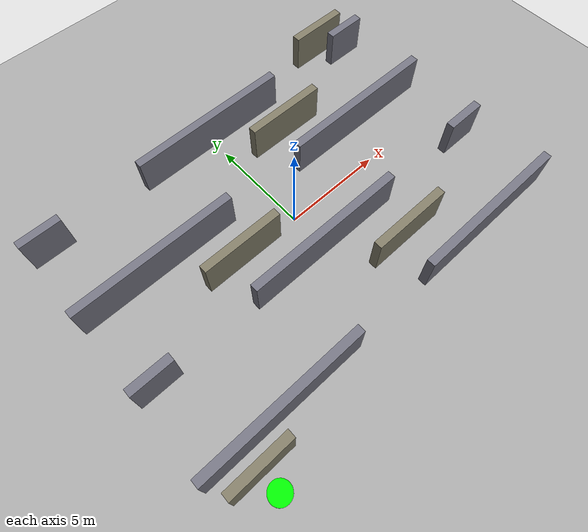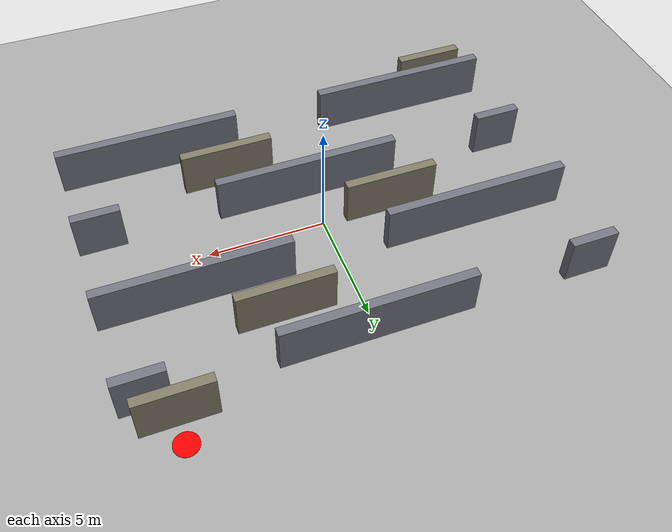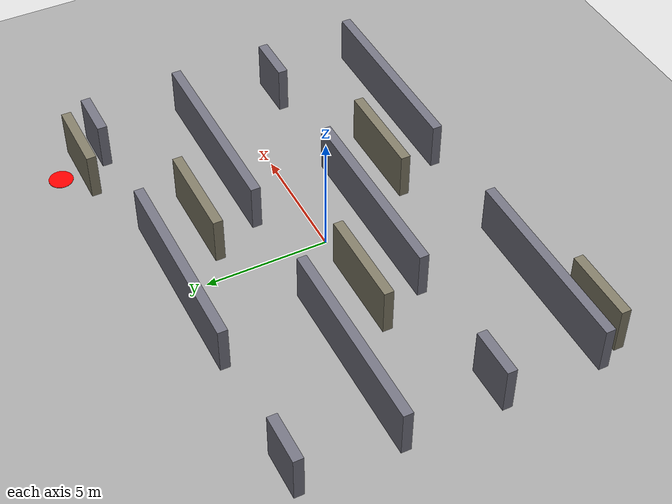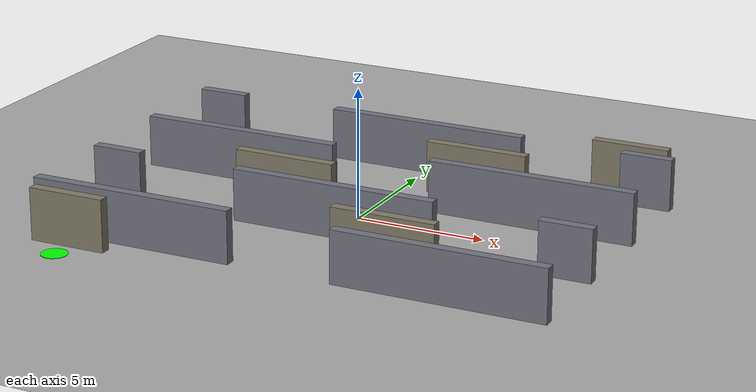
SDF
<?xml version="1.0" ?>
<sdf version="1.9">
  <world name="maze_world">

    <!-- Core system plugins (required by Gazebo Harmonic/gz-sim) -->
    <plugin
      filename="gz-sim-physics-system"
      name="gz::sim::systems::Physics">
    </plugin>
    <plugin
      filename="gz-sim-user-commands-system"
      name="gz::sim::systems::UserCommands">
    </plugin>
    <plugin
      filename="gz-sim-scene-broadcaster-system"
      name="gz::sim::systems::SceneBroadcaster">
    </plugin>
    <plugin
      filename="gz-sim-sensors-system"
      name="gz::sim::systems::Sensors">
      <render_engine>ogre2</render_engine>
    </plugin>

    <!-- Lightweight physics settings (same as previous worlds) -->
    <physics name="default_physics" type="dart">
      <max_step_size>0.004</max_step_size>
      <real_time_factor>1.0</real_time_factor>
      <real_time_update_rate>250</real_time_update_rate>
    </physics>

    <!-- Scene / lighting: identical to Forest World and Warehouse World -->
    <scene>
      <ambient>0.7 0.7 0.7 1</ambient>
      <background>0.72 0.82 0.93 1</background>
      <shadows>false</shadows>
      <grid>false</grid>
      <sky></sky>
    </scene>

    <light type="directional" name="sun">
      <cast_shadows>false</cast_shadows>
      <pose>0 0 10 0 0 0</pose>
      <diffuse>0.9 0.9 0.85 1</diffuse>
      <specular>0.2 0.2 0.2 1</specular>
      <direction>-0.4 0.2 -0.9</direction>
      <intensity>1.0</intensity>
    </light>

    <!-- Flat floor: 60 x 60 m -->
    <model name="ground_plane">
      <static>true</static>
      <link name="link">
        <collision name="collision">
          <geometry>
            <plane>
              <normal>0 0 1</normal>
              <size>60 60</size>
            </plane>
          </geometry>
          <surface>
            <friction>
              <ode>
                <mu>0.9</mu>
                <mu2>0.9</mu2>
              </ode>
            </friction>
          </surface>
        </collision>
        <visual name="visual">
          <geometry>
            <plane>
              <normal>0 0 1</normal>
              <size>60 60</size>
            </plane>
          </geometry>
          <material>
            <ambient>0.6 0.6 0.6 1</ambient>
            <diffuse>0.65 0.65 0.65 1</diffuse>
            <specular>0.1 0.1 0.1 1</specular>
          </material>
        </visual>
      </link>
    </model>

    <!-- START / GOAL MARKERS: same coordinates and style as previous worlds -->
    <model name="start_marker">
      <static>true</static>
      <pose>-8 -8 0.01 0 0 0</pose>
      <link name="link">
        <visual name="visual">
          <geometry>
            <cylinder>
              <radius>0.5</radius>
              <length>0.02</length>
            </cylinder>
          </geometry>
          <material>
            <ambient>0 1 0 1</ambient>
            <diffuse>0 1 0 1</diffuse>
            <emissive>0 0.3 0 1</emissive>
          </material>
        </visual>
      </link>
    </model>

    <model name="goal_marker">
      <static>true</static>
      <pose>8 8 0.01 0 0 0</pose>
      <link name="link">
        <visual name="visual">
          <geometry>
            <cylinder>
              <radius>0.5</radius>
              <length>0.02</length>
            </cylinder>
          </geometry>
          <material>
            <ambient>1 0 0 1</ambient>
            <diffuse>1 0 0 1</diffuse>
            <emissive>0.3 0 0 1</emissive>
          </material>
        </visual>
      </link>
    </model>

    <!-- Row 1 (y = -6): single gap centered at x = 0 -->
    <model name="wall_row1_a">
      <static>true</static>
      <pose>-6 -6 1 0 0 0</pose>
      <link name="link">
        <collision name="collision"><geometry><box><size>8 0.4 2</size></box></geometry></collision>
        <visual name="visual">
          <geometry><box><size>8 0.4 2</size></box></geometry>
          <material><ambient>0.45 0.45 0.5 1</ambient><diffuse>0.45 0.45 0.5 1</diffuse></material>
        </visual>
      </link>
    </model>

    <model name="wall_row1_b">
      <static>true</static>
      <pose>6 -6 1 0 0 0</pose>
      <link name="link">
        <collision name="collision"><geometry><box><size>8 0.4 2</size></box></geometry></collision>
        <visual name="visual">
          <geometry><box><size>8 0.4 2</size></box></geometry>
          <material><ambient>0.45 0.45 0.5 1</ambient><diffuse>0.45 0.45 0.5 1</diffuse></material>
        </visual>
      </link>
    </model>

    <!-- Row 2 (y = -2): two gaps -> junction, near x=-6 and x=6 -->
    <model name="wall_row2_a">
      <static>true</static>
      <pose>-9 -2 1 0 0 0</pose>
      <link name="link">
        <collision name="collision"><geometry><box><size>2 0.4 2</size></box></geometry></collision>
        <visual name="visual">
          <geometry><box><size>2 0.4 2</size></box></geometry>
          <material><ambient>0.45 0.45 0.5 1</ambient><diffuse>0.45 0.45 0.5 1</diffuse></material>
        </visual>
      </link>
    </model>

    <model name="wall_row2_b">
      <static>true</static>
      <pose>0 -2 1 0 0 0</pose>
      <link name="link">
        <collision name="collision"><geometry><box><size>8 0.4 2</size></box></geometry></collision>
        <visual name="visual">
          <geometry><box><size>8 0.4 2</size></box></geometry>
          <material><ambient>0.45 0.45 0.5 1</ambient><diffuse>0.45 0.45 0.5 1</diffuse></material>
        </visual>
      </link>
    </model>

    <model name="wall_row2_c">
      <static>true</static>
      <pose>9 -2 1 0 0 0</pose>
      <link name="link">
        <collision name="collision"><geometry><box><size>2 0.4 2</size></box></geometry></collision>
        <visual name="visual">
          <geometry><box><size>2 0.4 2</size></box></geometry>
          <material><ambient>0.45 0.45 0.5 1</ambient><diffuse>0.45 0.45 0.5 1</diffuse></material>
        </visual>
      </link>
    </model>

    <!-- Row 3 (y = 2): single gap centered at x = 0 -->
    <model name="wall_row3_a">
      <static>true</static>
      <pose>-6 2 1 0 0 0</pose>
      <link name="link">
        <collision name="collision"><geometry><box><size>8 0.4 2</size></box></geometry></collision>
        <visual name="visual">
          <geometry><box><size>8 0.4 2</size></box></geometry>
          <material><ambient>0.45 0.45 0.5 1</ambient><diffuse>0.45 0.45 0.5 1</diffuse></material>
        </visual>
      </link>
    </model>

    <model name="wall_row3_b">
      <static>true</static>
      <pose>6 2 1 0 0 0</pose>
      <link name="link">
        <collision name="collision"><geometry><box><size>8 0.4 2</size></box></geometry></collision>
        <visual name="visual">
          <geometry><box><size>8 0.4 2</size></box></geometry>
          <material><ambient>0.45 0.45 0.5 1</ambient><diffuse>0.45 0.45 0.5 1</diffuse></material>
        </visual>
      </link>
    </model>

    <!-- Row 4 (y = 6): two gaps -> junction, near x=-6 and x=6 -->
    <model name="wall_row4_a">
      <static>true</static>
      <pose>-9 6 1 0 0 0</pose>
      <link name="link">
        <collision name="collision"><geometry><box><size>2 0.4 2</size></box></geometry></collision>
        <visual name="visual">
          <geometry><box><size>2 0.4 2</size></box></geometry>
          <material><ambient>0.45 0.45 0.5 1</ambient><diffuse>0.45 0.45 0.5 1</diffuse></material>
        </visual>
      </link>
    </model>

    <model name="wall_row4_b">
      <static>true</static>
      <pose>0 6 1 0 0 0</pose>
      <link name="link">
        <collision name="collision"><geometry><box><size>8 0.4 2</size></box></geometry></collision>
        <visual name="visual">
          <geometry><box><size>8 0.4 2</size></box></geometry>
          <material><ambient>0.45 0.45 0.5 1</ambient><diffuse>0.45 0.45 0.5 1</diffuse></material>
        </visual>
      </link>
    </model>

    <model name="wall_row4_c">
      <static>true</static>
      <pose>9 6 1 0 0 0</pose>
      <link name="link">
        <collision name="collision"><geometry><box><size>2 0.4 2</size></box></geometry></collision>
        <visual name="visual">
          <geometry><box><size>2 0.4 2</size></box></geometry>
          <material><ambient>0.45 0.45 0.5 1</ambient><diffuse>0.45 0.45 0.5 1</diffuse></material>
        </visual>
      </link>
    </model>

    <!-- Baffles: short walls inside open bands adding extra turns without blocking any route -->
    <model name="baffle_start">
      <static>true</static>
      <pose>-8 -7 1 0 0 0</pose>
      <link name="link">
        <collision name="collision"><geometry><box><size>3 0.4 2</size></box></geometry></collision>
        <visual name="visual">
          <geometry><box><size>3 0.4 2</size></box></geometry>
          <material><ambient>0.5 0.48 0.4 1</ambient><diffuse>0.5 0.48 0.4 1</diffuse></material>
        </visual>
      </link>
    </model>

    <model name="baffle_band1">
      <static>true</static>
      <pose>3 -4 1 0 0 0</pose>
      <link name="link">
        <collision name="collision"><geometry><box><size>4 0.4 2</size></box></geometry></collision>
        <visual name="visual">
          <geometry><box><size>4 0.4 2</size></box></geometry>
          <material><ambient>0.5 0.48 0.4 1</ambient><diffuse>0.5 0.48 0.4 1</diffuse></material>
        </visual>
      </link>
    </model>

    <model name="baffle_band2">
      <static>true</static>
      <pose>-3 0 1 0 0 0</pose>
      <link name="link">
        <collision name="collision"><geometry><box><size>4 0.4 2</size></box></geometry></collision>
        <visual name="visual">
          <geometry><box><size>4 0.4 2</size></box></geometry>
          <material><ambient>0.5 0.48 0.4 1</ambient><diffuse>0.5 0.48 0.4 1</diffuse></material>
        </visual>
      </link>
    </model>

    <model name="baffle_band3">
      <static>true</static>
      <pose>3 4 1 0 0 0</pose>
      <link name="link">
        <collision name="collision"><geometry><box><size>4 0.4 2</size></box></geometry></collision>
        <visual name="visual">
          <geometry><box><size>4 0.4 2</size></box></geometry>
          <material><ambient>0.5 0.48 0.4 1</ambient><diffuse>0.5 0.48 0.4 1</diffuse></material>
        </visual>
      </link>
    </model>

    <model name="baffle_goal">
      <static>true</static>
      <pose>8 7 1 0 0 0</pose>
      <link name="link">
        <collision name="collision"><geometry><box><size>3 0.4 2</size></box></geometry></collision>
        <visual name="visual">
          <geometry><box><size>3 0.4 2</size></box></geometry>
          <material><ambient>0.5 0.48 0.4 1</ambient><diffuse>0.5 0.48 0.4 1</diffuse></material>
        </visual>
      </link>
    </model>

  </world>
</sdf>
